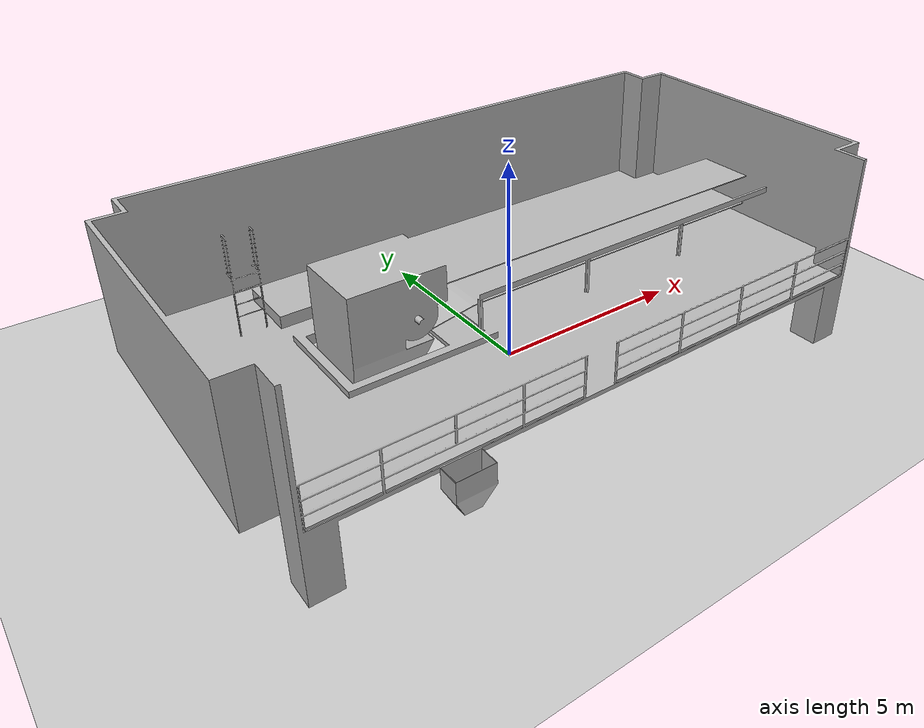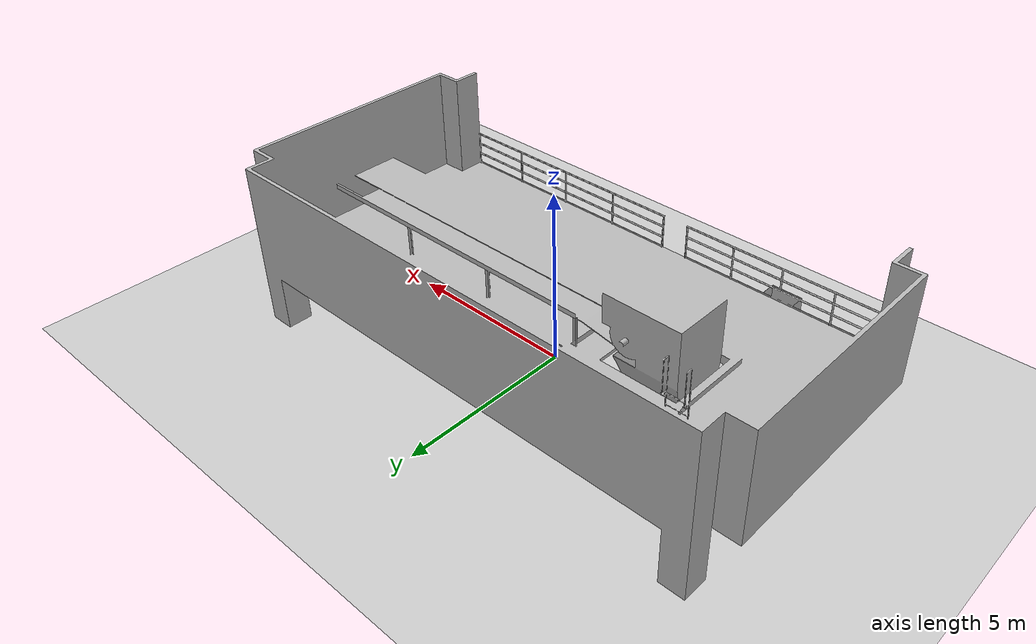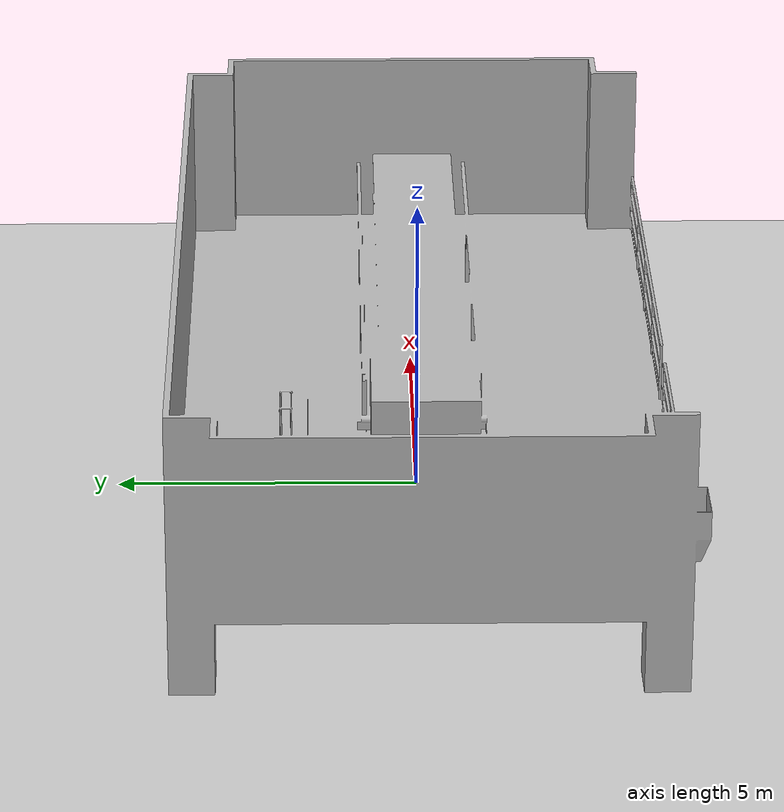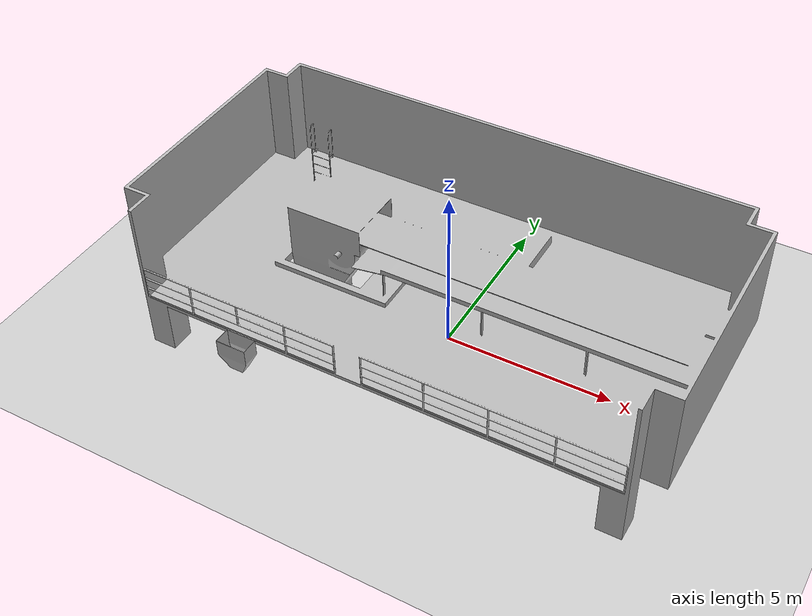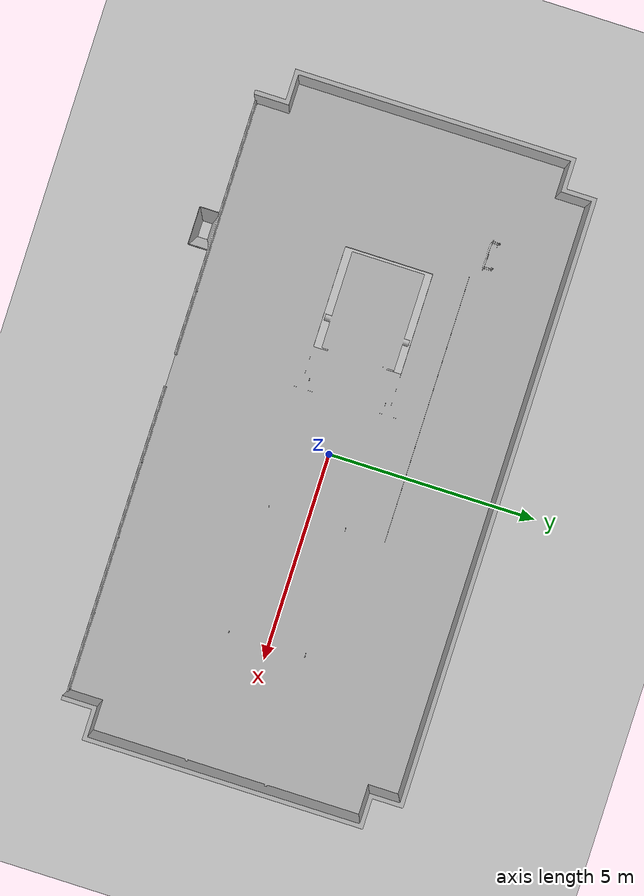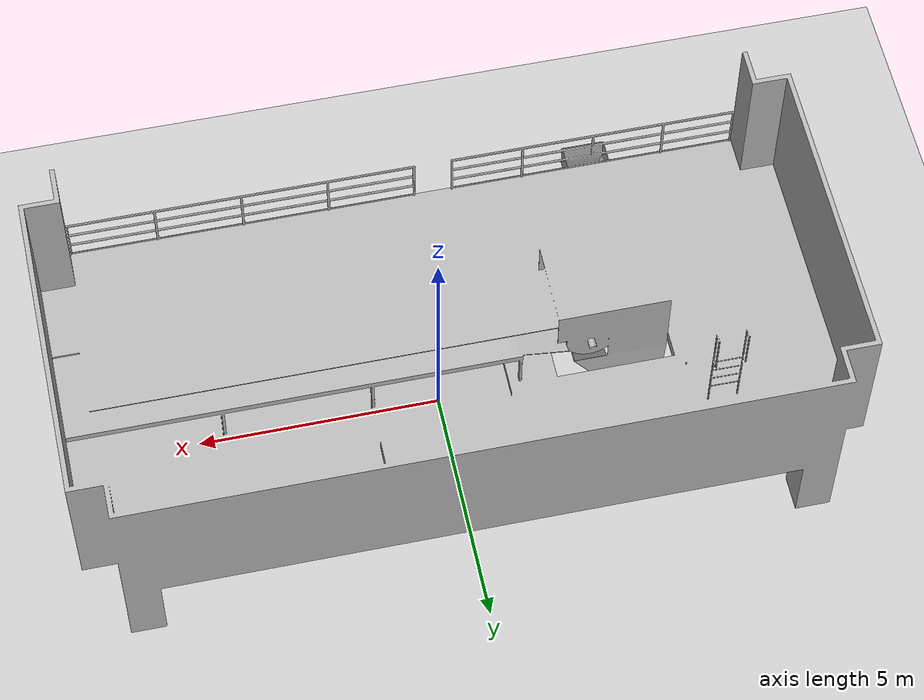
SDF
<sdf version="1.7">
 <world name="default">
  <light name="sun" type="directional">
   <pose>0 0 10 0 -0 0</pose>
   <diffuse>0.8 0.8 0.8 1</diffuse>
   <specular>0.2 0.2 0.2 1</specular>
   <attenuation>
    <range>1000</range>
    <constant>0.9</constant>
    <linear>0.01</linear>
    <quadratic>0.001</quadratic>
   </attenuation>
   <direction>-0.5 0.1 -0.9</direction>
   <spot><inner_angle>0</inner_angle><outer_angle>0</outer_angle><falloff>0</falloff></spot>
  </light>
  <model name="ground_plane">
   <static>1</static>
   <link name="link">
    <collision name="collision">
     <geometry><plane><normal>0 0 1</normal><size>100 100</size></plane></geometry>
     <surface><friction><ode><mu>100</mu><mu2>50</mu2></ode></friction></surface>
    </collision>
    <visual name="visual">
     <cast_shadows>0</cast_shadows>
     <geometry><plane><normal>0 0 1</normal><size>100 100</size></plane></geometry>
     <material>
      <script><uri>file://media/materials/scripts/gazebo.material</uri><name>Gazebo/Grey</name></script>
     </material>
    </visual>
   </link>
  </model>
  <gravity>0 0 -9.8</gravity>
  <magnetic_field>6e-06 2.3e-05 -4.2e-05</magnetic_field>
  <atmosphere type="adiabatic"/>
  <physics type="ode">
   <max_step_size>0.001</max_step_size>
   <real_time_factor>1</real_time_factor>
   <real_time_update_rate>1000</real_time_update_rate>
  </physics>
  <scene><ambient>0.4 0.4 0.4 1</ambient><background>0.7 0.7 0.7 1</background><shadows>1</shadows></scene>
  <spherical_coordinates>
   <surface_model>EARTH_WGS84</surface_model>
   <latitude_deg>0</latitude_deg>
   <longitude_deg>0</longitude_deg>
   <elevation>0</elevation>
   <heading_deg>0</heading_deg>
  </spherical_coordinates>
  <model name="test_site_gazebo">
   <static>1</static>
   <link name="base_link">
    <inertial>
     <pose>0 0 2 0 -0 0</pose>
     <mass>3271.8</mass>
     <inertia>
      <ixx>837.38</ixx>
      <ixy>1.8972e-13</ixy>
      <ixz>3.7907e-30</ixz>
      <iyy>837.38</iyy>
      <iyz>-3.8867e-14</iyz>
      <izz>278.77</izz>
     </inertia>
    </inertial>
    <collision name="base_link_collision">
     <geometry>
      <mesh>
       <scale>1 1 1</scale>
       <uri>/home/franciszhang/Desktop/Mbot_Test/src/test_site_gazebo/meshes/base_link.STL</uri>
      </mesh>
     </geometry>
     <max_contacts>100</max_contacts>
    </collision>
    <visual name="base_link_visual">
     <geometry>
      <mesh>
       <scale>1 1 1</scale>
       <uri>/home/franciszhang/Desktop/Mbot_Test/src/test_site_gazebo/meshes/base_link.STL</uri>
      </mesh>
     </geometry>
    </visual>
   </link>
   <pose>0 0 1.636 0 -0 0</pose>
  </model>
 </world>
</sdf>
